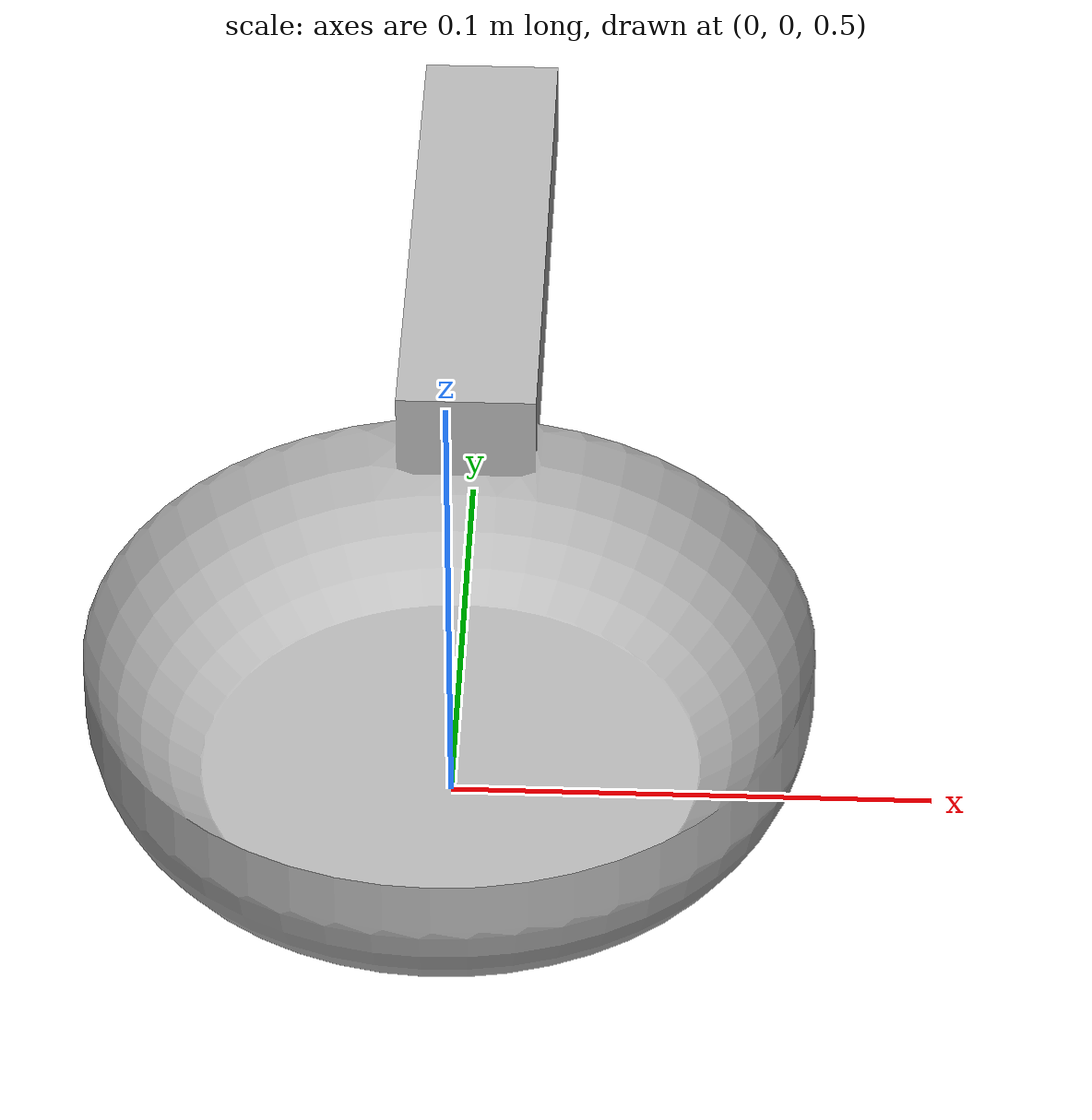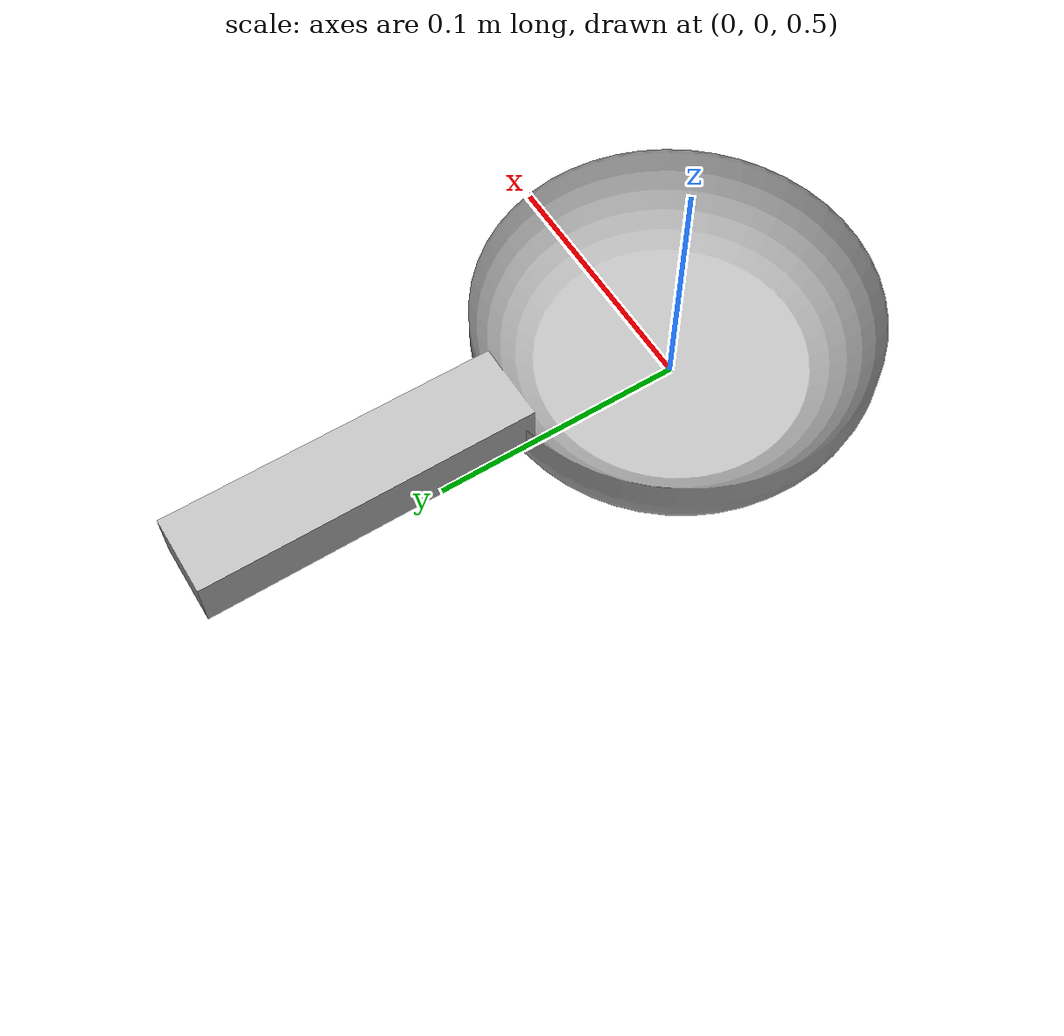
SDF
<?xml version='1.0'?>
<sdf version="1.6">
<model name="flypan">
  <pose>0 0 0.5 0 0 0</pose>
    <link name="link">
      <inertial>
        <mass>0.2</mass>
        <inertia>
          <ixx>2.35e-05</ixx>
          <ixy>0.0</ixy>
          <ixz>0.0</ixz>
          <iyy>2.35e-05</iyy>
          <iyz>0.0</iyz>
          <izz>2.35e-05</izz>
        </inertia>
      </inertial>
      <collision name="collision">
        <geometry>
          <mesh>
            <uri>model://flypan/flypan_a.dae</uri>
          </mesh>
        </geometry>
      </collision>
      <visual name="visual">
        <geometry>
          <mesh>
            <uri>model://flypan/flypan_a.dae</uri>
          </mesh>
        </geometry>
      </visual>
    </link>
  </model>
</sdf>
